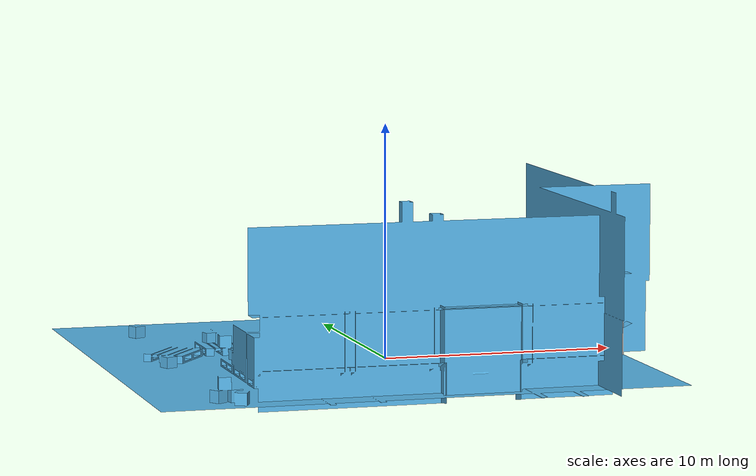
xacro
<?xml version="1.0" ?>
<robot name="workcell" xmlns:xacro="http://www.ros.org/wiki/xacro">
  <xacro:arg name="workcell_parent_name" default="world_interface"/>
  <!-- URDF -->
  <xacro:include filename="$(find metacontrol_sim)/urdf/workcell/workcell.urdf.xacro"/>
  <xacro:workcell_urdf workcell_parent="$(arg workcell_parent_name)"/>

  <!-- Gazebo -->
  <xacro:include filename="$(find metacontrol_sim)/urdf/workcell/workcell.gazebo.xacro"/>
</robot>

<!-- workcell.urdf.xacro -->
<robot name="workcell_urdf" xmlns:xacro="http://www.ros.org/wiki/xacro">
    <xacro:macro name="workcell_urdf" params="workcell_parent">

    <!-- Links -->
    <link name="world_interface"/>
    <link name="workcell">
      <visual>
        <geometry>
          <mesh filename="package://metacontrol_sim/meshes/workcell/visual/workcell.dae"/>
        </geometry>
      </visual>
      <collision>
        <geometry>
          <mesh filename="package://metacontrol_sim/meshes/workcell/collision/workcell.dae"/>
        </geometry>
      </collision>
      <inertial>
        <inertia ixx="1.0" ixy="0" ixz="0"
                 iyy="1.0" iyz="0"
                 izz="1.0" />
        <mass value="100" />
      </inertial>
    </link>

    <joint name="workcell_to_world_interface" type="fixed">
      <parent link="${workcell_parent}" />
      <child link="workcell" />
      <origin xyz="0 0 0" rpy="0 0 ${radians(90)}" />
    </joint>
  </xacro:macro>
</robot>
